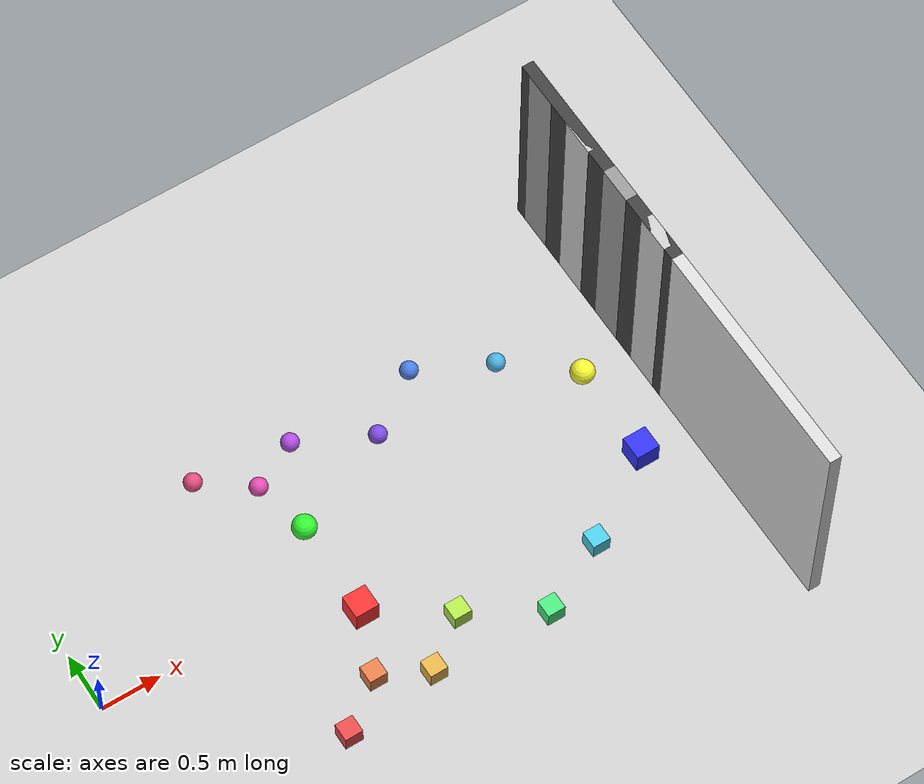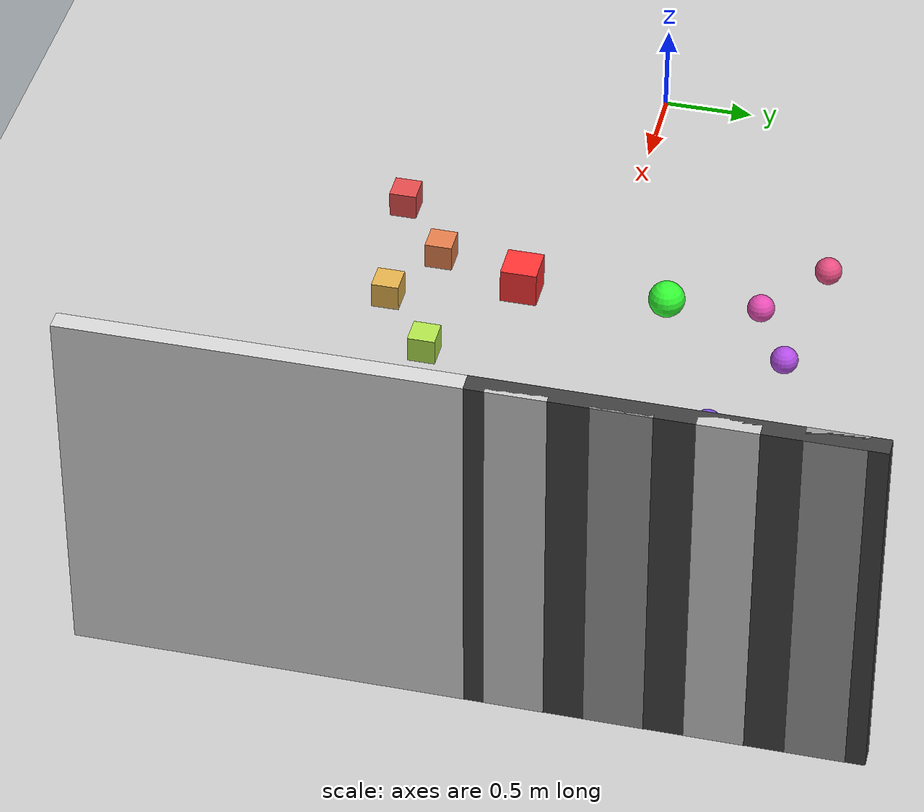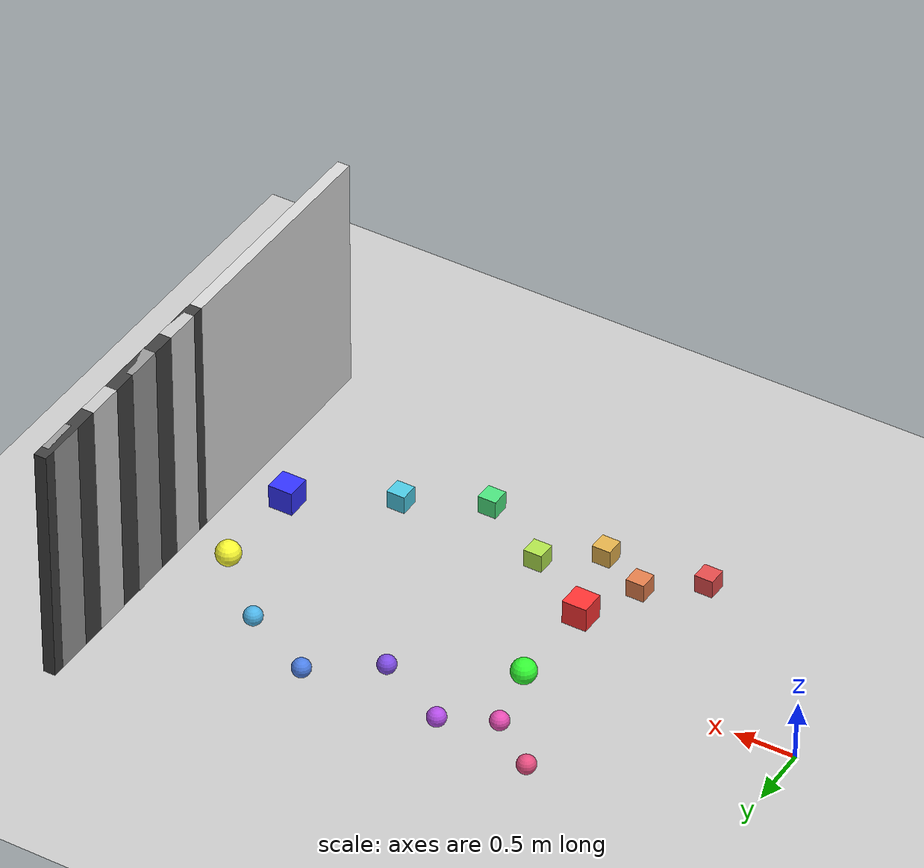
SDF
<?xml version="1.0" ?>
<sdf version="1.6">
  <world name="camera_c11_fps_static_load">
    <scene>
      <ambient>0.7 0.7 0.7 1</ambient>
      <background>0.5 0.5 0.5 1</background>
    </scene>

    <include>
      <uri>model://sun</uri>
    </include>

    <include>
      <uri>model://ground_plane</uri>
    </include>

    <model name="heavy_wall_left">
      <pose>5.0 -1.0 1.0 0 0 0</pose>
      <static>true</static>
      <link name="link">
        <collision name="collision">
          <geometry>
            <box><size>0.1 2.0 2.0</size></box>
          </geometry>
        </collision>
        <visual name="visual">
          <geometry>
            <box><size>0.1 2.0 2.0</size></box>
          </geometry>
          <material>
            <ambient>0.85 0.85 0.85 1</ambient>
            <diffuse>0.85 0.85 0.85 1</diffuse>
          </material>
        </visual>
      </link>
    </model>

    <model name="heavy_wall_right">
      <pose>5.0 1.0 1.0 0 0 0</pose>
      <static>true</static>
      <link name="link">
        <collision name="collision">
          <geometry>
            <box><size>0.1 2.0 2.0</size></box>
          </geometry>
        </collision>
        <visual name="base">
          <geometry>
            <box><size>0.1 2.0 2.0</size></box>
          </geometry>
          <material>
            <ambient>0.25 0.25 0.25 1</ambient>
            <diffuse>0.25 0.25 0.25 1</diffuse>
          </material>
        </visual>
        <visual name="stripe_1">
          <pose>0 -0.75 0 0 0 0</pose>
          <geometry>
            <box><size>0.101 0.3 2.0</size></box>
          </geometry>
          <material>
            <ambient>0.8 0.8 0.8 1</ambient>
            <diffuse>0.8 0.8 0.8 1</diffuse>
          </material>
        </visual>
        <visual name="stripe_2">
          <pose>0 -0.25 0 0 0 0</pose>
          <geometry>
            <box><size>0.101 0.3 2.0</size></box>
          </geometry>
          <material>
            <ambient>0.6 0.6 0.6 1</ambient>
            <diffuse>0.6 0.6 0.6 1</diffuse>
          </material>
        </visual>
        <visual name="stripe_3">
          <pose>0 0.25 0 0 0 0</pose>
          <geometry>
            <box><size>0.101 0.3 2.0</size></box>
          </geometry>
          <material>
            <ambient>0.8 0.8 0.8 1</ambient>
            <diffuse>0.8 0.8 0.8 1</diffuse>
          </material>
        </visual>
        <visual name="stripe_4">
          <pose>0 0.75 0 0 0 0</pose>
          <geometry>
            <box><size>0.101 0.3 2.0</size></box>
          </geometry>
          <material>
            <ambient>0.6 0.6 0.6 1</ambient>
            <diffuse>0.6 0.6 0.6 1</diffuse>
          </material>
        </visual>
      </link>
    </model>

    <model name="heavy_near_cube">
      <pose>2.0 -0.4 0.2 0 0 0</pose>
      <static>true</static>
      <link name="link">
        <collision name="collision"><geometry><box><size>0.2 0.2 0.2</size></box></geometry></collision>
        <visual name="visual"><geometry><box><size>0.2 0.2 0.2</size></box></geometry><material><ambient>1 0.2 0.2 1</ambient><diffuse>1 0.2 0.2 1</diffuse></material></visual>
      </link>
    </model>

    <model name="heavy_near_sphere">
      <pose>2.0 0.4 0.2 0 0 0</pose>
      <static>true</static>
      <link name="link">
        <collision name="collision"><geometry><sphere><radius>0.1</radius></sphere></geometry></collision>
        <visual name="visual"><geometry><sphere><radius>0.1</radius></sphere></geometry><material><ambient>0.2 1 0.2 1</ambient><diffuse>0.2 1 0.2 1</diffuse></material></visual>
      </link>
    </model>

    <model name="heavy_far_cube">
      <pose>4.5 -0.4 0.2 0 0 0</pose>
      <static>true</static>
      <link name="link">
        <collision name="collision"><geometry><box><size>0.2 0.2 0.2</size></box></geometry></collision>
        <visual name="visual"><geometry><box><size>0.2 0.2 0.2</size></box></geometry><material><ambient>0.2 0.2 1 1</ambient><diffuse>0.2 0.2 1 1</diffuse></material></visual>
      </link>
    </model>

    <model name="heavy_far_sphere">
      <pose>4.5 0.4 0.2 0 0 0</pose>
      <static>true</static>
      <link name="link">
        <collision name="collision"><geometry><sphere><radius>0.1</radius></sphere></geometry></collision>
        <visual name="visual"><geometry><sphere><radius>0.1</radius></sphere></geometry><material><ambient>1 1 0.2 1</ambient><diffuse>1 1 0.2 1</diffuse></material></visual>
      </link>
    </model>

    <model name="heavy_cube_1">
      <pose>1.4 -1.2 0.15 0 0 0</pose>
      <static>true</static>
      <link name="link"><collision name="collision"><geometry><box><size>0.15 0.15 0.15</size></box></geometry></collision><visual name="visual"><geometry><box><size>0.15 0.15 0.15</size></box></geometry><material><ambient>0.9 0.3 0.3 1</ambient><diffuse>0.9 0.3 0.3 1</diffuse></material></visual></link>
    </model>

    <model name="heavy_cube_2">
      <pose>1.8 -0.9 0.15 0 0 0</pose>
      <static>true</static>
      <link name="link"><collision name="collision"><geometry><box><size>0.15 0.15 0.15</size></box></geometry></collision><visual name="visual"><geometry><box><size>0.15 0.15 0.15</size></box></geometry><material><ambient>0.9 0.5 0.3 1</ambient><diffuse>0.9 0.5 0.3 1</diffuse></material></visual></link>
    </model>

    <model name="heavy_cube_3">
      <pose>2.2 -1.1 0.15 0 0 0</pose>
      <static>true</static>
      <link name="link"><collision name="collision"><geometry><box><size>0.15 0.15 0.15</size></box></geometry></collision><visual name="visual"><geometry><box><size>0.15 0.15 0.15</size></box></geometry><material><ambient>0.9 0.7 0.3 1</ambient><diffuse>0.9 0.7 0.3 1</diffuse></material></visual></link>
    </model>

    <model name="heavy_cube_4">
      <pose>2.6 -0.8 0.15 0 0 0</pose>
      <static>true</static>
      <link name="link"><collision name="collision"><geometry><box><size>0.15 0.15 0.15</size></box></geometry></collision><visual name="visual"><geometry><box><size>0.15 0.15 0.15</size></box></geometry><material><ambient>0.7 0.9 0.3 1</ambient><diffuse>0.7 0.9 0.3 1</diffuse></material></visual></link>
    </model>

    <model name="heavy_cube_5">
      <pose>3.2 -1.15 0.15 0 0 0</pose>
      <static>true</static>
      <link name="link"><collision name="collision"><geometry><box><size>0.15 0.15 0.15</size></box></geometry></collision><visual name="visual"><geometry><box><size>0.15 0.15 0.15</size></box></geometry><material><ambient>0.3 0.9 0.5 1</ambient><diffuse>0.3 0.9 0.5 1</diffuse></material></visual></link>
    </model>

    <model name="heavy_cube_6">
      <pose>3.8 -0.85 0.15 0 0 0</pose>
      <static>true</static>
      <link name="link"><collision name="collision"><geometry><box><size>0.15 0.15 0.15</size></box></geometry></collision><visual name="visual"><geometry><box><size>0.15 0.15 0.15</size></box></geometry><material><ambient>0.3 0.8 0.9 1</ambient><diffuse>0.3 0.8 0.9 1</diffuse></material></visual></link>
    </model>

    <model name="heavy_sphere_1">
      <pose>1.5 1.2 0.15 0 0 0</pose>
      <static>true</static>
      <link name="link"><collision name="collision"><geometry><sphere><radius>0.075</radius></sphere></geometry></collision><visual name="visual"><geometry><sphere><radius>0.075</radius></sphere></geometry><material><ambient>0.9 0.3 0.5 1</ambient><diffuse>0.9 0.3 0.5 1</diffuse></material></visual></link>
    </model>

    <model name="heavy_sphere_2">
      <pose>1.9 0.9 0.15 0 0 0</pose>
      <static>true</static>
      <link name="link"><collision name="collision"><geometry><sphere><radius>0.075</radius></sphere></geometry></collision><visual name="visual"><geometry><sphere><radius>0.075</radius></sphere></geometry><material><ambient>0.9 0.3 0.7 1</ambient><diffuse>0.9 0.3 0.7 1</diffuse></material></visual></link>
    </model>

    <model name="heavy_sphere_3">
      <pose>2.3 1.1 0.15 0 0 0</pose>
      <static>true</static>
      <link name="link"><collision name="collision"><geometry><sphere><radius>0.075</radius></sphere></geometry></collision><visual name="visual"><geometry><sphere><radius>0.075</radius></sphere></geometry><material><ambient>0.7 0.3 0.9 1</ambient><diffuse>0.7 0.3 0.9 1</diffuse></material></visual></link>
    </model>

    <model name="heavy_sphere_4">
      <pose>2.9 0.8 0.15 0 0 0</pose>
      <static>true</static>
      <link name="link"><collision name="collision"><geometry><sphere><radius>0.075</radius></sphere></geometry></collision><visual name="visual"><geometry><sphere><radius>0.075</radius></sphere></geometry><material><ambient>0.5 0.3 0.9 1</ambient><diffuse>0.5 0.3 0.9 1</diffuse></material></visual></link>
    </model>

    <model name="heavy_sphere_5">
      <pose>3.4 1.15 0.15 0 0 0</pose>
      <static>true</static>
      <link name="link"><collision name="collision"><geometry><sphere><radius>0.075</radius></sphere></geometry></collision><visual name="visual"><geometry><sphere><radius>0.075</radius></sphere></geometry><material><ambient>0.3 0.5 0.9 1</ambient><diffuse>0.3 0.5 0.9 1</diffuse></material></visual></link>
    </model>

    <model name="heavy_sphere_6">
      <pose>4.0 0.85 0.15 0 0 0</pose>
      <static>true</static>
      <link name="link"><collision name="collision"><geometry><sphere><radius>0.075</radius></sphere></geometry></collision><visual name="visual"><geometry><sphere><radius>0.075</radius></sphere></geometry><material><ambient>0.3 0.7 0.9 1</ambient><diffuse>0.3 0.7 0.9 1</diffuse></material></visual></link>
    </model>
  </world>
</sdf>
